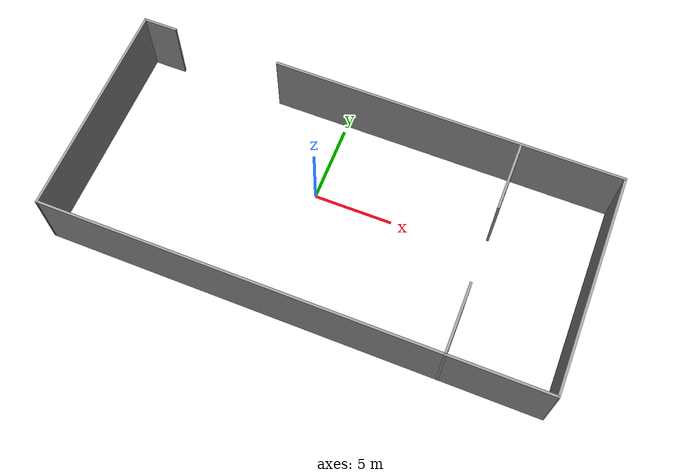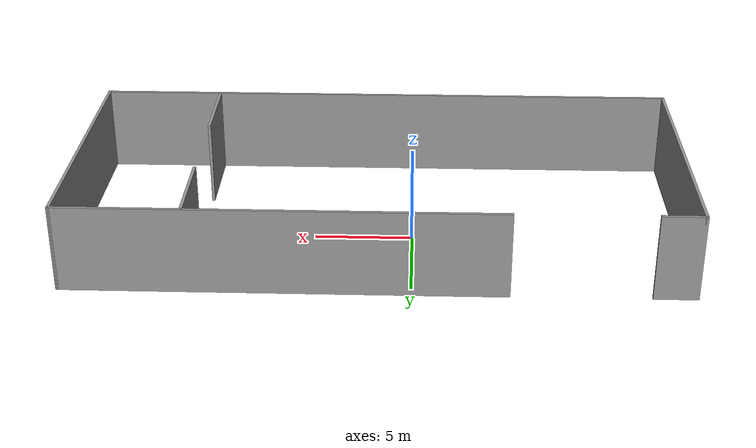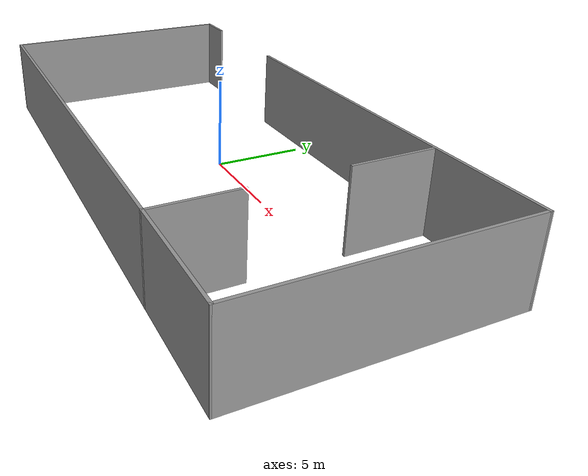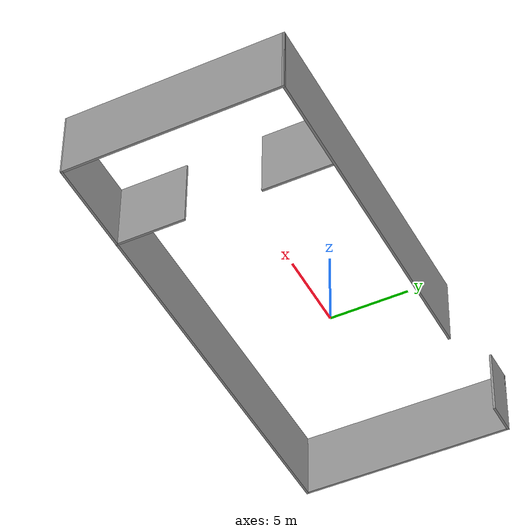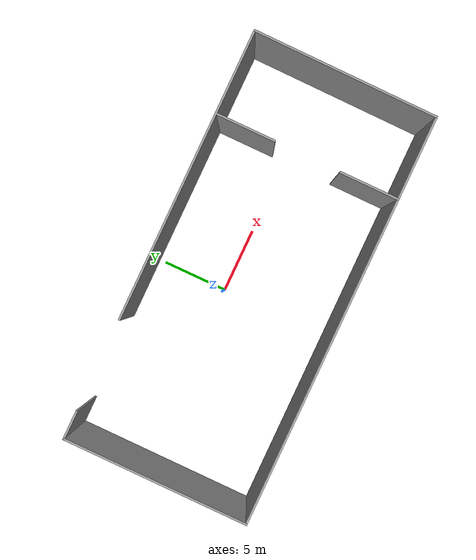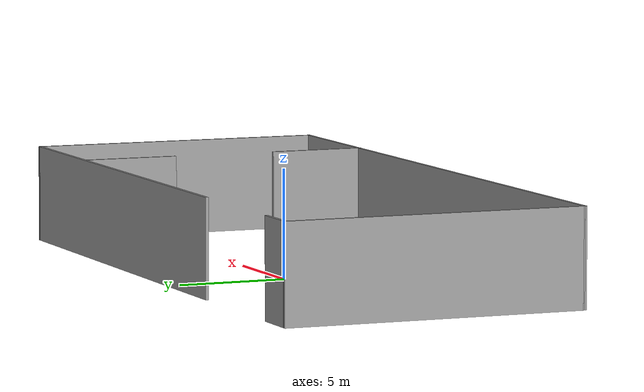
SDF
<?xml version='1.0'?>
<sdf version='1.7'>
  <model name='mapteenoi'>
    <pose>1.70468 -1.38282 0 0 -0 0</pose>
    <link name='Wall_10'>
      <collision name='Wall_10_Collision'>
        <geometry>
          <box>
            <size>13.9602 0.15 4.5</size>
          </box>
        </geometry>
        <pose>0 0 2.25 0 -0 0</pose>
      </collision>
      <visual name='Wall_10_Visual'>
        <pose>0 0 2.25 0 -0 0</pose>
        <geometry>
          <box>
            <size>13.9602 0.15 4.5</size>
          </box>
        </geometry>
        <material>
          <script>
            <uri>file://media/materials/scripts/gazebo.material</uri>
            <name>Gazebo/Grey</name>
          </script>
          <ambient>1 1 1 1</ambient>
        </material>
        <meta>
          <layer>0</layer>
        </meta>
      </visual>
      <pose>15.4048 0.014817 0 0 -0 1.56493</pose>
    </link>
    <link name='Wall_12'>
      <collision name='Wall_12_Collision'>
        <geometry>
          <box>
            <size>22 0.15 4.5</size>
          </box>
        </geometry>
        <pose>0 0 2.25 0 -0 0</pose>
      </collision>
      <visual name='Wall_12_Visual'>
        <pose>0 0 2.25 0 -0 0</pose>
        <geometry>
          <box>
            <size>22 0.15 4.5</size>
          </box>
        </geometry>
        <material>
          <script>
            <uri>file://media/materials/scripts/gazebo.material</uri>
            <name>Gazebo/Grey</name>
          </script>
          <ambient>1 1 1 1</ambient>
        </material>
        <meta>
          <layer>0</layer>
        </meta>
      </visual>
      <pose>4.52032 6.91982 0 0 -0 3.14159</pose>
    </link>
    <link name='Wall_14'>
      <collision name='Wall_14_Collision'>
        <geometry>
          <box>
            <size>13.96 0.15 4.5</size>
          </box>
        </geometry>
        <pose>0 0 2.25 0 -0 0</pose>
      </collision>
      <visual name='Wall_14_Visual'>
        <pose>0 0 2.25 0 -0 0</pose>
        <geometry>
          <box>
            <size>13.96 0.15 4.5</size>
          </box>
        </geometry>
        <material>
          <script>
            <uri>file://media/materials/scripts/gazebo.material</uri>
            <name>Gazebo/Grey</name>
          </script>
          <ambient>1 1 1 1</ambient>
        </material>
        <meta>
          <layer>0</layer>
        </meta>
      </visual>
      <pose>-15.4457 -0.015183 0 0 -0 1.5708</pose>
    </link>
    <link name='Wall_16'>
      <collision name='Wall_16_Collision'>
        <geometry>
          <box>
            <size>2.21 0.15 4.5</size>
          </box>
        </geometry>
        <pose>0 0 2.25 0 -0 0</pose>
      </collision>
      <visual name='Wall_16_Visual'>
        <pose>0 0 2.25 0 -0 0</pose>
        <geometry>
          <box>
            <size>2.21 0.15 4.5</size>
          </box>
        </geometry>
        <material>
          <script>
            <uri>file://media/materials/scripts/gazebo.material</uri>
            <name>Gazebo/Grey</name>
          </script>
          <ambient>1 1 1 1</ambient>
        </material>
        <meta>
          <layer>0</layer>
        </meta>
      </visual>
      <pose>-14.4157 6.88982 0 0 -0 0</pose>
    </link>
    <link name='Wall_20'>
      <collision name='Wall_20_Collision'>
        <geometry>
          <box>
            <size>4.5 0.15 4.5</size>
          </box>
        </geometry>
        <pose>0 0 2.25 0 -0 0</pose>
      </collision>
      <visual name='Wall_20_Visual'>
        <pose>0 0 2.25 0 -0 0</pose>
        <geometry>
          <box>
            <size>4.5 0.15 4.5</size>
          </box>
        </geometry>
        <material>
          <script>
            <uri>file://media/materials/scripts/gazebo.material</uri>
            <name>Gazebo/Grey</name>
          </script>
          <ambient>1 1 1 1</ambient>
        </material>
        <meta>
          <layer>0</layer>
        </meta>
      </visual>
      <pose>9.14332 -4.72718 0 0 -0 -1.5708</pose>
    </link>
    <link name='Wall_22'>
      <collision name='Wall_22_Collision'>
        <geometry>
          <box>
            <size>4.5 0.15 4.5</size>
          </box>
        </geometry>
        <pose>0 0 2.25 0 -0 0</pose>
      </collision>
      <visual name='Wall_22_Visual'>
        <pose>0 0 2.25 0 -0 0</pose>
        <geometry>
          <box>
            <size>4.5 0.15 4.5</size>
          </box>
        </geometry>
        <material>
          <script>
            <uri>file://media/materials/scripts/gazebo.material</uri>
            <name>Gazebo/Grey</name>
          </script>
          <ambient>1 1 1 1</ambient>
        </material>
        <meta>
          <layer>0</layer>
        </meta>
      </visual>
      <pose>9.17232 4.66282 0 0 -0 -1.5708</pose>
    </link>
    <link name='Wall_7'>
      <collision name='Wall_7_Collision'>
        <geometry>
          <box>
            <size>30.96 0.15 4.5</size>
          </box>
        </geometry>
        <pose>0 0 2.25 0 -0 0</pose>
      </collision>
      <visual name='Wall_7_Visual'>
        <pose>0 0 2.25 0 -0 0</pose>
        <geometry>
          <box>
            <size>30.96 0.15 4.5</size>
          </box>
        </geometry>
        <material>
          <script>
            <uri>file://media/materials/scripts/gazebo.material</uri>
            <name>Gazebo/Grey</name>
          </script>
          <ambient>1 1 1 1</ambient>
        </material>
        <meta>
          <layer>0</layer>
        </meta>
      </visual>
      <pose>-0.040683 -6.90518 0 0 -0 0.000974</pose>
    </link>
    <static>1</static>
  </model>
</sdf>
